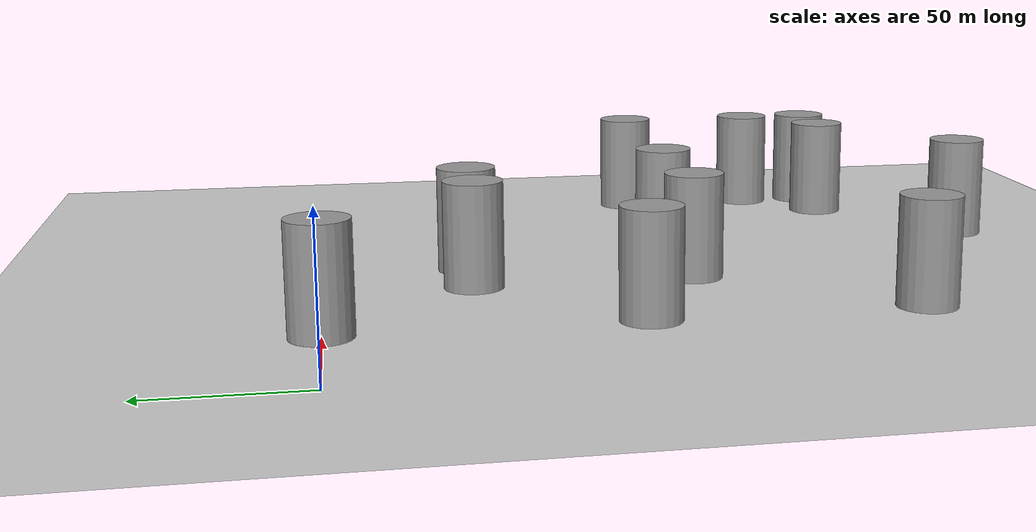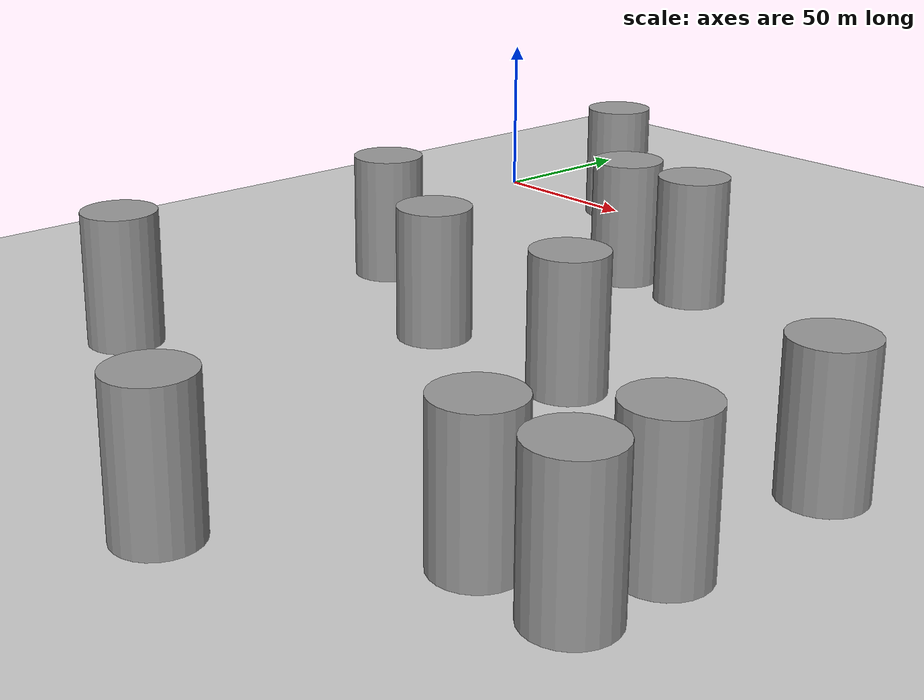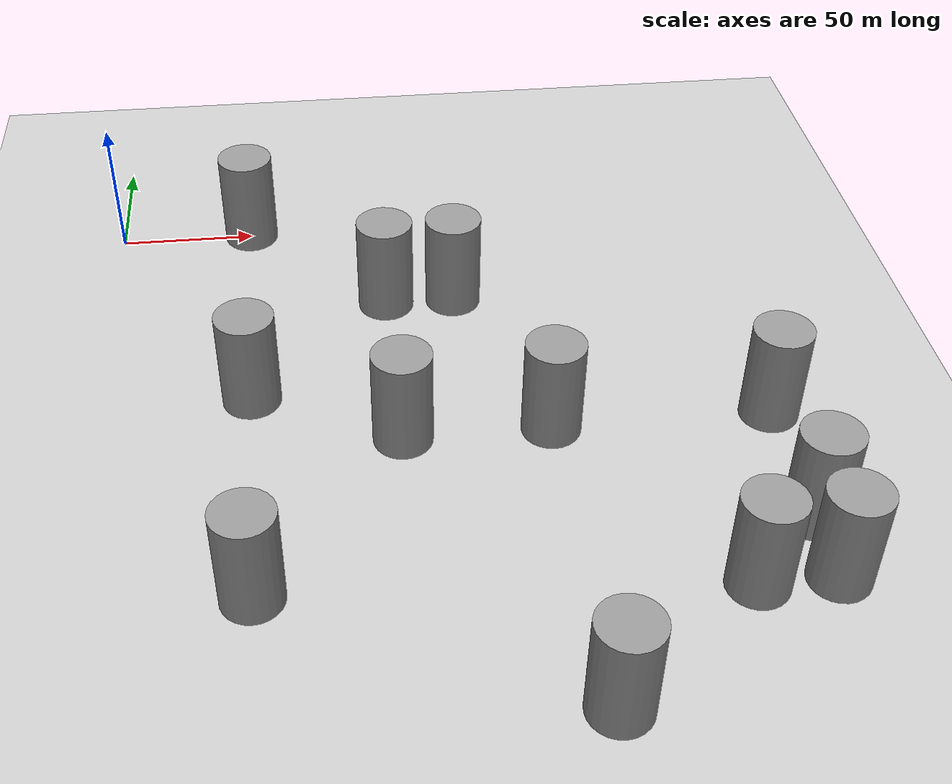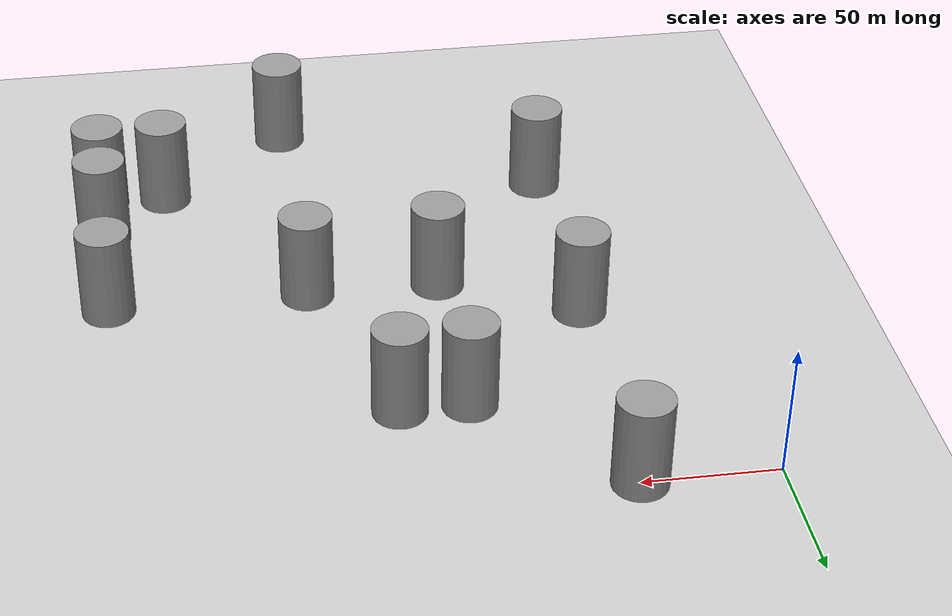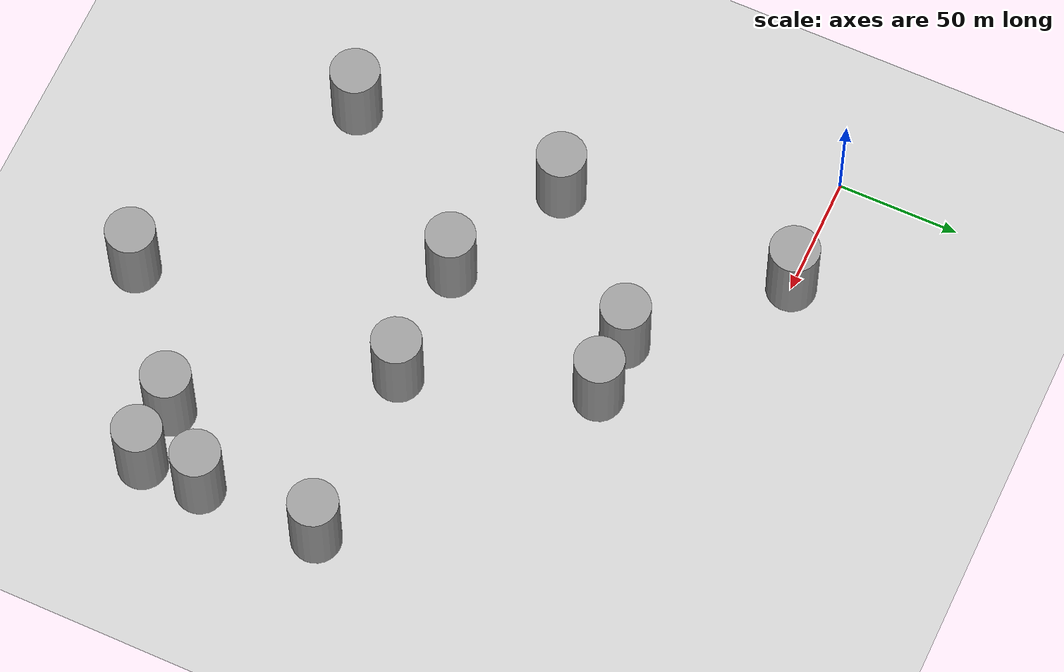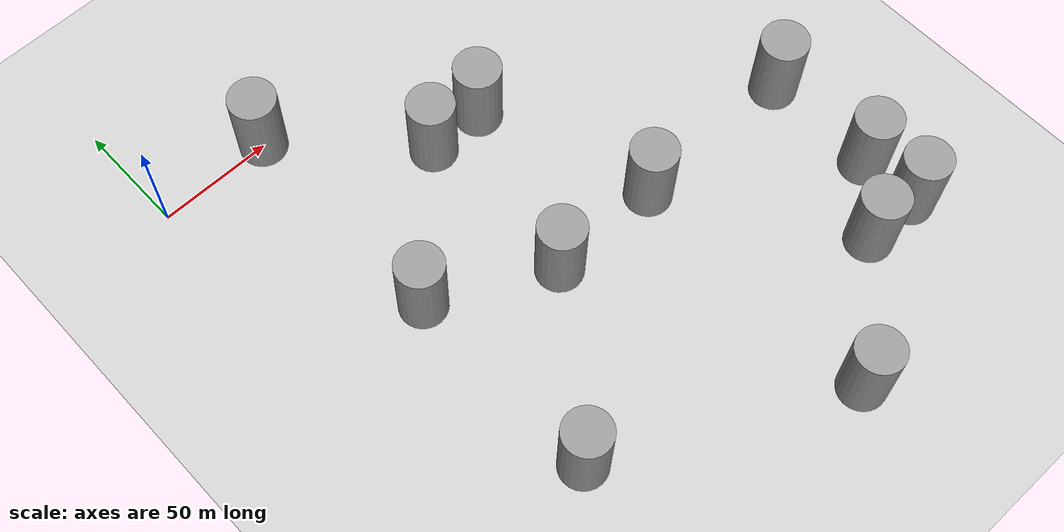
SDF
<sdf version="1.6">
 <world name="default">
  <physics name="default_physics" default="0" type="ode">
   <ode>
    <solver>
     <type>quick</type>
     <iters>50</iters>
     <sor>0.8</sor>
     <use_dynamic_moi_rescaling>0</use_dynamic_moi_rescaling>
    </solver>
    <constraints>
     <cfm>0</cfm>
     <erp>0.2</erp>
     <contact_max_correcting_vel>0.1</contact_max_correcting_vel>
     <contact_surface_layer>0</contact_surface_layer>
    </constraints>
   </ode>
   <real_time_update_rate>100</real_time_update_rate>
   <max_step_size>0.01</max_step_size>
   <real_time_factor>1</real_time_factor>
  </physics>
  <light name="sun" type="directional">
   <pose>0 0 10 0 -0 0</pose>
   <diffuse>0.8 0.8 0.8 1</diffuse>
   <specular>0.2 0.2 0.2 1</specular>
   <attenuation>
    <range>1000</range>
    <constant>0.9</constant>
    <linear>0.01</linear>
    <quadratic>0.001</quadratic>
   </attenuation>
   <direction>-0.5 0.1 -0.9</direction>
  </light>
  <model name="ground_plane">
   <static>1</static>
   <link name="link">
    <collision name="collision">
     <geometry><plane><normal>0 0 1</normal><size>100 100</size></plane></geometry>
     <surface><friction><ode><mu>100</mu><mu2>50</mu2></ode></friction></surface>
    </collision>
    <visual name="visual">
     <cast_shadows>0</cast_shadows>
     <geometry><plane><normal>0 0 1</normal><size>100 100</size></plane></geometry>
     <material>
      <script><uri>file://media/materials/scripts/gazebo.material</uri><name>Gazebo/Grey</name></script>
     </material>
    </visual>
   </link>
  </model>
  <gravity>0 0 0</gravity>
  <magnetic_field>6e-06 2.3e-05 -4.2e-05</magnetic_field>
  <atmosphere type="adiabatic"/>
  <scene><ambient>0.4 0.4 0.4 1</ambient><background>0.7 0.7 0.7 1</background><shadows>1</shadows></scene>
  <spherical_coordinates>
   <surface_model>EARTH_WGS84</surface_model>
   <latitude_deg>0</latitude_deg>
   <longitude_deg>0</longitude_deg>
   <elevation>0</elevation>
   <heading_deg>0</heading_deg>
  </spherical_coordinates>
  <model name="suav1">
   <link name="base_link">
    <inertial>
     <mass>0.1</mass>
     <inertia><ixx>1</ixx><ixy>0</ixy><ixz>0</ixz><iyy>1</iyy><iyz>0</iyz><izz>1</izz></inertia>
    </inertial>
    <collision name="base_link_fixed_joint_lump__body_link_collision">
     <geometry>
      <mesh>
       <scale>0.1 0.1 0.1</scale>
       <uri>package://simple_airplane_description/meshes/simple_airplane.dae</uri>
      </mesh>
     </geometry>
    </collision>
    <visual name="base_link_fixed_joint_lump__base_visual_visual">
     <geometry>
      <mesh>
       <scale>0.1 0.1 0.1</scale>
       <uri>package://simple_airplane_description/meshes/simple_airplane.dae</uri>
      </mesh>
     </geometry>
    </visual>
    <gravity>0</gravity>
    <gravity>0</gravity>
    <visual name="front_camera_housing">
     <pose>0 0 0.015 0 -0 0</pose>
     <geometry><box><size>0.04 0.05 0.04</size></box></geometry>
    </visual>
    <visual name="front_camera_lens">
     <pose>0.025 0 0.015 0 1.5708 0</pose>
     <geometry><cylinder><length>0.01</length><radius>0.012</radius></cylinder></geometry>
    </visual>
    <sensor name="front_camera" type="camera">
     <pose>0.03 0 0.015 0 0 0</pose>
     <always_on>true</always_on>
     <update_rate>15</update_rate>
     <visualize>false</visualize>
     <camera name="front_camera">
      <horizontal_fov>1.5707963267948966</horizontal_fov>
      <image><width>640</width><height>360</height><format>R8G8B8</format></image>
      <clip><near>0.05</near><far>300</far></clip>
     </camera>
     <plugin filename="libgazebo_ros_camera.so" name="front_camera_controller">
      <robotNamespace>/suav1</robotNamespace>
      <cameraName>front_camera</cameraName>
      <imageTopicName>image_raw</imageTopicName>
      <cameraInfoTopicName>camera_info</cameraInfoTopicName>
      <frameName>front_camera_optical_frame</frameName>
      <updateRate>15.0</updateRate>
     </plugin>
    </sensor>
   </link>
   <static>0</static>
   <plugin name="object_controller" filename="libgazebo_ros_planar_move_with_banking_and_pitching_plugin1.so">
    <commandTopic>cmd_vel</commandTopic>
    <odometryTopic>odom</odometryTopic>
    <odometryFrame>odom</odometryFrame>
    <odometryRate>80.0</odometryRate>
    <robotBaseFrame>base_link</robotBaseFrame>
    <robotNamespace>/suav1/</robotNamespace>
   </plugin>
   <pose>0 0 2 0 0 0</pose>
  </model>
  <model name="static_obs1">
   <static>true</static>
   <pose>50 0 18.13715 0 0 0</pose>
   <link name="link">
    <inertial>
     <mass>1</mass>
     <inertia><ixx>0.145833</ixx><ixy>0</ixy><ixz>0</ixz><iyy>0.145833</iyy><iyz>0</iyz><izz>0.125</izz></inertia>
    </inertial>
    <collision name="collision">
     <geometry><cylinder><radius>10.1458</radius><length>36.2743</length></cylinder></geometry>
    </collision>
    <visual name="visual">
     <geometry><cylinder><radius>10.1458</radius><length>36.2743</length></cylinder></geometry>
     <material>
      <script><name>Gazebo/Grey</name><uri>file://media/materials/scripts/gazebo.material</uri></script>
     </material>
    </visual>
   </link>
  </model>
  <model name="unit_cylinder_clone">
   <static>true</static>
   <pose>100.023 -50.0251 18.13715 0 0 0</pose>
   <link name="link">
    <inertial>
     <mass>1</mass>
     <inertia><ixx>0.145833</ixx><ixy>0</ixy><ixz>0</ixz><iyy>0.145833</iyy><iyz>0</iyz><izz>0.125</izz></inertia>
    </inertial>
    <collision name="collision">
     <geometry><cylinder><radius>10.1458</radius><length>36.2743</length></cylinder></geometry>
    </collision>
    <visual name="visual">
     <geometry><cylinder><radius>10.1458</radius><length>36.2743</length></cylinder></geometry>
     <material>
      <script><name>Gazebo/Grey</name><uri>file://media/materials/scripts/gazebo.material</uri></script>
     </material>
    </visual>
   </link>
  </model>
  <model name="unit_cylinder_clone_0">
   <static>true</static>
   <pose>125.023 -50.0251 18.13715 0 0 0</pose>
   <link name="link">
    <inertial>
     <mass>1</mass>
     <inertia><ixx>0.145833</ixx><ixy>0</ixy><ixz>0</ixz><iyy>0.145833</iyy><iyz>0</iyz><izz>0.125</izz></inertia>
    </inertial>
    <collision name="collision">
     <geometry><cylinder><radius>10.1458</radius><length>36.2743</length></cylinder></geometry>
    </collision>
    <visual name="visual">
     <geometry><cylinder><radius>10.1458</radius><length>36.2743</length></cylinder></geometry>
     <material>
      <script><name>Gazebo/Grey</name><uri>file://media/materials/scripts/gazebo.material</uri></script>
     </material>
    </visual>
   </link>
  </model>
  <model name="unit_cylinder_clone_1">
   <static>true</static>
   <pose>50.0229 -100.025 18.13715 0 0 0</pose>
   <link name="link">
    <inertial>
     <mass>1</mass>
     <inertia><ixx>0.145833</ixx><ixy>0</ixy><ixz>0</ixz><iyy>0.145833</iyy><iyz>0</iyz><izz>0.125</izz></inertia>
    </inertial>
    <collision name="collision">
     <geometry><cylinder><radius>10.1458</radius><length>36.2743</length></cylinder></geometry>
    </collision>
    <visual name="visual">
     <geometry><cylinder><radius>10.1458</radius><length>36.2743</length></cylinder></geometry>
     <material>
      <script><name>Gazebo/Grey</name><uri>file://media/materials/scripts/gazebo.material</uri></script>
     </material>
    </visual>
   </link>
  </model>
  <model name="unit_cylinder_clone_2">
   <static>true</static>
   <pose>100.133 -125.017 18.13715 0 0 0</pose>
   <link name="link">
    <inertial>
     <mass>1</mass>
     <inertia><ixx>0.145833</ixx><ixy>0</ixy><ixz>0</ixz><iyy>0.145833</iyy><iyz>0</iyz><izz>0.125</izz></inertia>
    </inertial>
    <collision name="collision">
     <geometry><cylinder><radius>10.1458</radius><length>36.2743</length></cylinder></geometry>
    </collision>
    <visual name="visual">
     <geometry><cylinder><radius>10.1458</radius><length>36.2743</length></cylinder></geometry>
     <material>
      <script><name>Gazebo/Grey</name><uri>file://media/materials/scripts/gazebo.material</uri></script>
     </material>
    </visual>
   </link>
  </model>
  <model name="unit_cylinder_clone_3_clone">
   <static>true</static>
   <pose>225.023 -125.025 18.13715 0 0 0</pose>
   <link name="link">
    <inertial>
     <mass>1</mass>
     <inertia><ixx>0.145833</ixx><ixy>0</ixy><ixz>0</ixz><iyy>0.145833</iyy><iyz>0</iyz><izz>0.125</izz></inertia>
    </inertial>
    <collision name="collision">
     <geometry><cylinder><radius>10.1458</radius><length>36.2743</length></cylinder></geometry>
    </collision>
    <visual name="visual">
     <geometry><cylinder><radius>10.1458</radius><length>36.2743</length></cylinder></geometry>
     <material>
      <script><name>Gazebo/Grey</name><uri>file://media/materials/scripts/gazebo.material</uri></script>
     </material>
    </visual>
   </link>
  </model>
  <model name="unit_cylinder_clone_3_clone_0">
   <static>true</static>
   <pose>50.0229 -190.025 18.13715 0 0 0</pose>
   <link name="link">
    <inertial>
     <mass>1</mass>
     <inertia><ixx>0.145833</ixx><ixy>0</ixy><ixz>0</ixz><iyy>0.145833</iyy><iyz>0</iyz><izz>0.125</izz></inertia>
    </inertial>
    <collision name="collision">
     <geometry><cylinder><radius>10.1458</radius><length>36.2743</length></cylinder></geometry>
    </collision>
    <visual name="visual">
     <geometry><cylinder><radius>10.1458</radius><length>36.2743</length></cylinder></geometry>
     <material>
      <script><name>Gazebo/Grey</name><uri>file://media/materials/scripts/gazebo.material</uri></script>
     </material>
    </visual>
   </link>
  </model>
  <model name="unit_cylinder_clone_3_clone_0_clone">
   <static>true</static>
   <pose>150.023 -125.025 18.13715 0 0 0</pose>
   <link name="link">
    <inertial>
     <mass>1</mass>
     <inertia><ixx>0.145833</ixx><ixy>0</ixy><ixz>0</ixz><iyy>0.145833</iyy><iyz>0</iyz><izz>0.125</izz></inertia>
    </inertial>
    <collision name="collision">
     <geometry><cylinder><radius>10.1458</radius><length>36.2743</length></cylinder></geometry>
    </collision>
    <visual name="visual">
     <geometry><cylinder><radius>10.1458</radius><length>36.2743</length></cylinder></geometry>
     <material>
      <script><name>Gazebo/Grey</name><uri>file://media/materials/scripts/gazebo.material</uri></script>
     </material>
    </visual>
   </link>
  </model>
  <model name="unit_cylinder_clone_3_clone_0_clone_0">
   <static>true</static>
   <pose>225.023 -200.025 18.13715 0 0 0</pose>
   <link name="link">
    <inertial>
     <mass>1</mass>
     <inertia><ixx>0.145833</ixx><ixy>0</ixy><ixz>0</ixz><iyy>0.145833</iyy><iyz>0</iyz><izz>0.125</izz></inertia>
    </inertial>
    <collision name="collision">
     <geometry><cylinder><radius>10.1458</radius><length>36.2743</length></cylinder></geometry>
    </collision>
    <visual name="visual">
     <geometry><cylinder><radius>10.1458</radius><length>36.2743</length></cylinder></geometry>
     <material>
      <script><name>Gazebo/Grey</name><uri>file://media/materials/scripts/gazebo.material</uri></script>
     </material>
    </visual>
   </link>
  </model>
  <model name="unit_cylinder_clone_3_clone_0_clone_0_clone">
   <static>true</static>
   <pose>225.023 -175.025 18.13715 0 0 0</pose>
   <link name="link">
    <inertial>
     <mass>1</mass>
     <inertia><ixx>0.145833</ixx><ixy>0</ixy><ixz>0</ixz><iyy>0.145833</iyy><iyz>0</iyz><izz>0.125</izz></inertia>
    </inertial>
    <collision name="collision">
     <geometry><cylinder><radius>10.1458</radius><length>36.2743</length></cylinder></geometry>
    </collision>
    <visual name="visual">
     <geometry><cylinder><radius>10.1458</radius><length>36.2743</length></cylinder></geometry>
     <material>
      <script><name>Gazebo/Grey</name><uri>file://media/materials/scripts/gazebo.material</uri></script>
     </material>
    </visual>
   </link>
  </model>
  <model name="unit_cylinder_clone_3_clone_0_clone_0_clone_clone">
   <static>true</static>
   <pose>200.023 -200.025 18.13715 0 0 0</pose>
   <link name="link">
    <inertial>
     <mass>1</mass>
     <inertia><ixx>0.145833</ixx><ixy>0</ixy><ixz>0</ixz><iyy>0.145833</iyy><iyz>0</iyz><izz>0.125</izz></inertia>
    </inertial>
    <collision name="collision">
     <geometry><cylinder><radius>10.1458</radius><length>36.2743</length></cylinder></geometry>
    </collision>
    <visual name="visual">
     <geometry><cylinder><radius>10.1458</radius><length>36.2743</length></cylinder></geometry>
     <material>
      <script><name>Gazebo/Grey</name><uri>file://media/materials/scripts/gazebo.material</uri></script>
     </material>
    </visual>
   </link>
  </model>
  <model name="unit_cylinder_clone_3_clone_0_clone_1">
   <static>true</static>
   <pose>150.023 -240.025 18.13715 0 0 0</pose>
   <link name="link">
    <inertial>
     <mass>1</mass>
     <inertia><ixx>0.145833</ixx><ixy>0</ixy><ixz>0</ixz><iyy>0.145833</iyy><iyz>0</iyz><izz>0.125</izz></inertia>
    </inertial>
    <collision name="collision">
     <geometry><cylinder><radius>10.1458</radius><length>36.2743</length></cylinder></geometry>
    </collision>
    <visual name="visual">
     <geometry><cylinder><radius>10.1458</radius><length>36.2743</length></cylinder></geometry>
     <material>
      <script><name>Gazebo/Grey</name><uri>file://media/materials/scripts/gazebo.material</uri></script>
     </material>
    </visual>
   </link>
  </model>
 </world>
</sdf>
